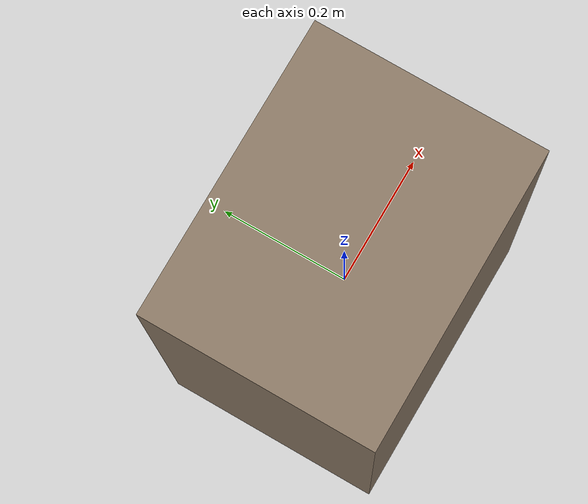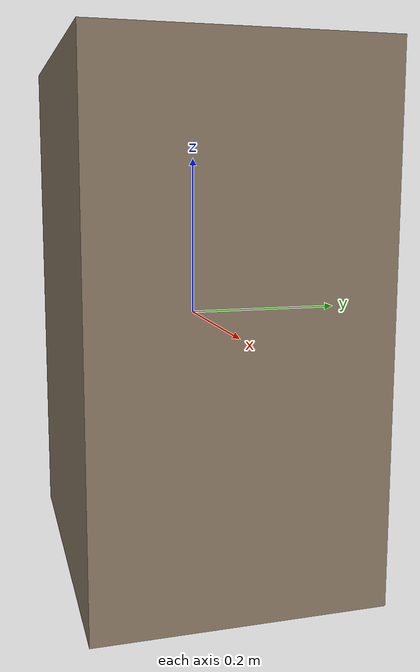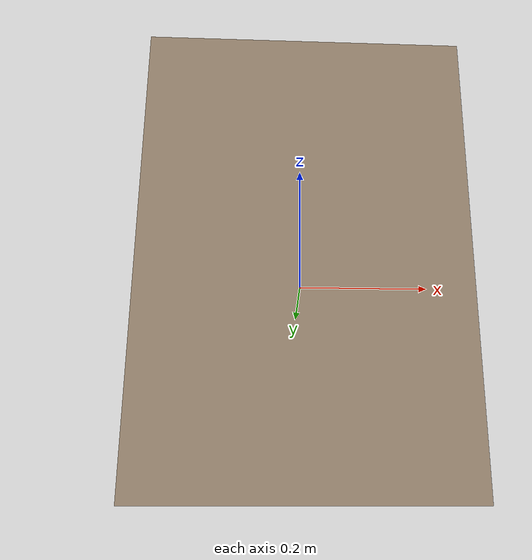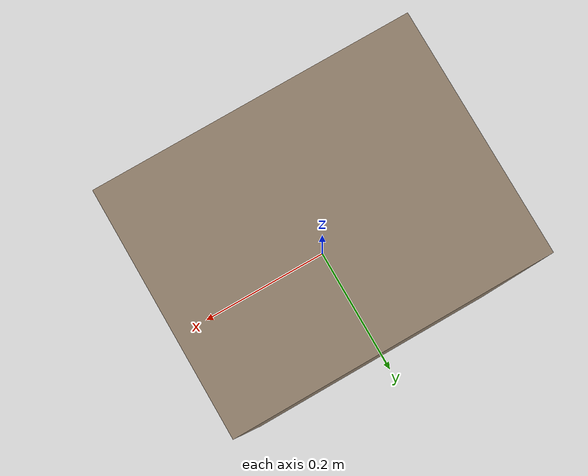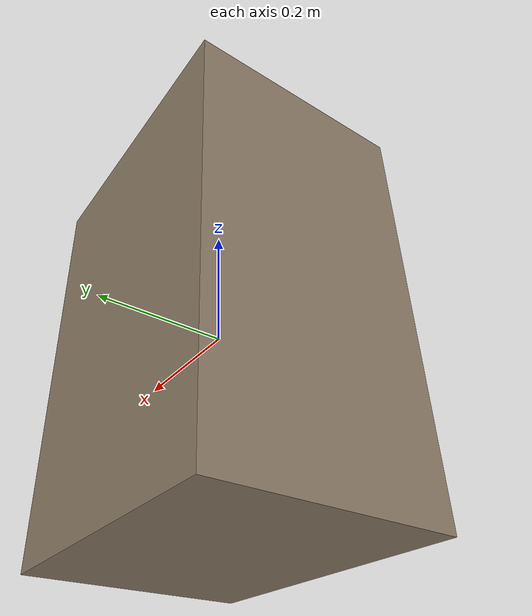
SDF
<?xml version="1.0"?>
<sdf version="1.6">
  <model name="BedTable">
    <static>true</static>
    <link name="link">
      <collision name="col">
        <geometry>
          <box>
            <size>0.45 0.35 0.65</size>
          </box>
        </geometry>
      </collision>
      <visual name="vis">
        <geometry>
          <box>
            <size>0.45 0.35 0.65</size>
          </box>
        </geometry>
        <material>
          <ambient>0.55 0.48 0.4 1</ambient>
          <diffuse>0.55 0.48 0.4 1</diffuse>
        </material>
      </visual>
    </link>
  </model>
</sdf>
